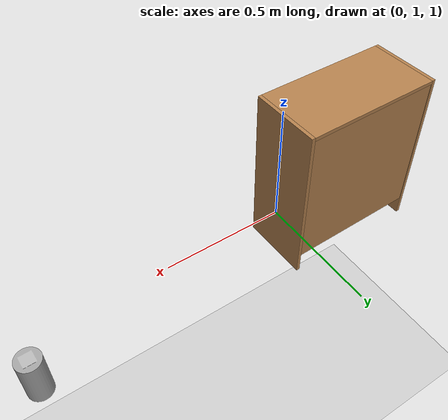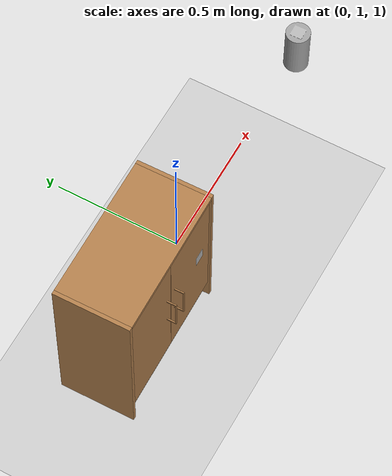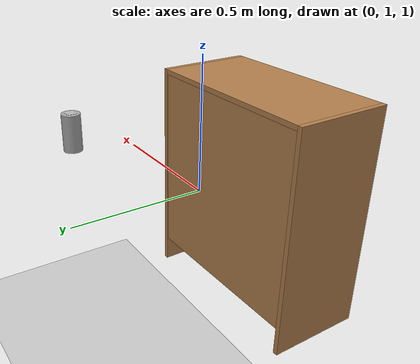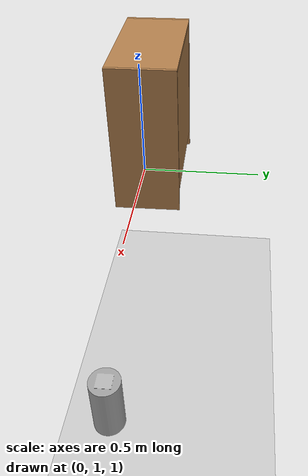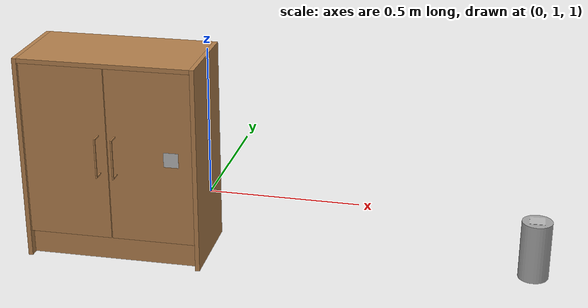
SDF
<sdf version="1.6">
 <world name="default">
  <light name="sun" type="directional">
   <pose>0 0 10 0 -0 0</pose>
   <diffuse>0.8 0.8 0.8 1</diffuse>
   <specular>0.2 0.2 0.2 1</specular>
   <attenuation>
    <range>1000</range>
    <constant>0.9</constant>
    <linear>0.01</linear>
    <quadratic>0.001</quadratic>
   </attenuation>
   <direction>-0.5 0.1 -0.9</direction>
  </light>
  <model name="ground_plane">
   <static>1</static>
   <link name="link">
    <collision name="collision">
     <geometry><plane><normal>0 0 1</normal><size>100 100</size></plane></geometry>
     <surface><friction><ode><mu>100</mu><mu2>50</mu2></ode></friction></surface>
    </collision>
    <visual name="visual">
     <cast_shadows>0</cast_shadows>
     <geometry><plane><normal>0 0 1</normal><size>100 100</size></plane></geometry>
     <material>
      <script><uri>file://media/materials/scripts/gazebo.material</uri><name>Gazebo/Grey</name></script>
     </material>
    </visual>
   </link>
  </model>
  <physics name="dart_2ms" default="0" type="dart">
   <max_step_size>0.002</max_step_size>
   <real_time_factor>1</real_time_factor>
   <real_time_update_rate>500</real_time_update_rate>
   <dart><solver><solver_type>pgs</solver_type></solver></dart>
  </physics>
  <scene><ambient>0.4 0.4 0.4 1</ambient><background>0.7 0.7 0.7 1</background><shadows>1</shadows></scene>
  <spherical_coordinates>
   <surface_model>EARTH_WGS84</surface_model>
   <latitude_deg>0</latitude_deg>
   <longitude_deg>0</longitude_deg>
   <elevation>0</elevation>
   <heading_deg>0</heading_deg>
  </spherical_coordinates>
  <gravity>0 0 -9.8</gravity>
  <magnetic_field>6e-06 2.3e-05 -4.2e-05</magnetic_field>
  <atmosphere type="adiabatic"/>
  <audio><device>default</device></audio>
  <model name="jar">
   <link name="link">
    <inertial>
     <mass>0.2</mass>
     <inertia><ixx>0.00079</ixx><ixy>0</ixy><ixz>0</ixz><iyy>0.00079</iyy><iyz>0</iyz><izz>0.00025</izz></inertia>
    </inertial>
    <collision name="collision">
     <geometry><mesh><uri>model://jar_marker/meshes/jar_marker.dae</uri></mesh></geometry>
     <surface>
      <friction><ode><mu>1</mu><mu2>1</mu2></ode></friction>
      <contact><ode><kp>1e+07</kp><kd>1</kd><min_depth>0.001</min_depth><max_vel>0.1</max_vel></ode></contact>
     </surface>
    </collision>
    <visual name="visual">
     <geometry><mesh><uri>model://jar_marker/meshes/jar_marker.dae</uri></mesh></geometry>
    </visual>
   </link>
   <pose>1.07424 1.05324 0.875 2e-06 4e-06 -1.5533</pose>
  </model>
  <model name="cabinet_door_fragile">
   <plugin name="BreakableJoint" filename="libbreakable_joint.so">
    <joint_name>right_handle_joint</joint_name>
    <pos_min>-0.05</pos_min>
    <pos_max>0.05</pos_max>
   </plugin>
   <plugin name="BreakableJoint" filename="libbreakable_joint.so">
    <joint_name>right_handle_joint2</joint_name>
    <pos_min>-0.05</pos_min>
    <pos_max>0.05</pos_max>
   </plugin>
   <plugin name="BreakableJoint" filename="libbreakable_joint.so">
    <joint_name>left_handle_joint</joint_name>
    <pos_min>-0.05</pos_min>
    <pos_max>0.05</pos_max>
   </plugin>
   <plugin name="BreakableJoint" filename="libbreakable_joint.so">
    <joint_name>left_handle_joint2</joint_name>
    <pos_min>-0.05</pos_min>
    <pos_max>0.05</pos_max>
   </plugin>
   <link name="cabinet">
    <pose>0 0 0.35 0 -0 0</pose>
    <inertial>
     <mass>16</mass>
     <inertia><ixx>1.59</ixx><ixy>0</ixy><ixz>0</ixz><iyy>1.12</iyy><iyz>0</iyz><izz>0.91</izz></inertia>
    </inertial>
    <collision name="back">
     <pose>-0.14 0 0.035 0 -0 0</pose>
     <geometry><box><size>0.015 0.585 0.6</size></box></geometry>
    </collision>
    <visual name="visual1">
     <pose>-0.14 0 0.035 0 -0 0</pose>
     <geometry><box><size>0.015 0.585 0.6</size></box></geometry>
     <material>
      <script><uri>file://media/materials/scripts/gazebo.material</uri><name>Gazebo/Wood</name></script>
     </material>
    </visual>
    <collision name="left_side">
     <pose>0 -0.2925 0 0 -0 0</pose>
     <geometry><box><size>0.3 0.015 0.7</size></box></geometry>
    </collision>
    <visual name="visual2">
     <pose>0 -0.2925 0 0 -0 0</pose>
     <geometry><box><size>0.3 0.015 0.7</size></box></geometry>
     <material>
      <script><uri>file://media/materials/scripts/gazebo.material</uri><name>Gazebo/Wood</name></script>
     </material>
    </visual>
    <collision name="right_side">
     <pose>0 0.2925 0 0 -0 0</pose>
     <geometry><box><size>0.3 0.015 0.7</size></box></geometry>
    </collision>
    <visual name="visual3">
     <pose>0 0.2925 0 0 -0 0</pose>
     <geometry><box><size>0.3 0.015 0.7</size></box></geometry>
     <material>
      <script><uri>file://media/materials/scripts/gazebo.material</uri><name>Gazebo/Wood</name></script>
     </material>
    </visual>
    <collision name="bottom">
     <pose>-0.002 0 -0.2525 0 -0 0</pose>
     <geometry><box><size>0.26 0.57 0.015</size></box></geometry>
    </collision>
    <visual name="visual4">
     <pose>-0.002 0 -0.2525 0 -0 0</pose>
     <geometry><box><size>0.26 0.57 0.015</size></box></geometry>
     <material>
      <script><uri>file://media/materials/scripts/gazebo.material</uri><name>Gazebo/Wood</name></script>
     </material>
    </visual>
    <collision name="top">
     <pose>0 0 0.3425 0 -0 0</pose>
     <geometry><box><size>0.3 0.57 0.015</size></box></geometry>
    </collision>
    <visual name="visual5">
     <pose>0 0 0.3425 0 -0 0</pose>
     <geometry><box><size>0.3 0.57 0.015</size></box></geometry>
     <material>
      <script><uri>file://media/materials/scripts/gazebo.material</uri><name>Gazebo/Wood</name></script>
     </material>
    </visual>
    <collision name="middle_shelf">
     <pose>-0.002 0 0.0475 0 -0 0</pose>
     <geometry><box><size>0.26 0.57 0.015</size></box></geometry>
    </collision>
    <visual name="visual6">
     <pose>-0.002 0 0.0475 0 -0 0</pose>
     <geometry><box><size>0.26 0.57 0.015</size></box></geometry>
     <material>
      <script><uri>file://media/materials/scripts/gazebo.material</uri><name>Gazebo/Wood</name></script>
     </material>
    </visual>
    <collision name="low_front">
     <pose>0.115 0 -0.3025 0 -0 0</pose>
     <geometry><box><size>0.015 0.57 0.09</size></box></geometry>
    </collision>
    <visual name="visual7">
     <pose>0.115 0 -0.3025 0 -0 0</pose>
     <geometry><box><size>0.015 0.57 0.09</size></box></geometry>
     <material>
      <script><uri>file://media/materials/scripts/gazebo.material</uri><name>Gazebo/Wood</name></script>
     </material>
    </visual>
   </link>
   <link name="right_door">
    <pose>0.135 0.2835 0.3875 0 -0 0</pose>
    <inertial>
     <mass>1.7</mass>
     <pose>0 -0.141 0 0 -0 0</pose>
     <inertia><ixx>0.06</ixx><ixy>0</ixy><ixz>0</ixz><iyy>0.49</iyy><iyz>0</iyz><izz>0.111</izz></inertia>
    </inertial>
    <collision name="right_face">
     <pose>0 -0.141 0 0 -0 0</pose>
     <geometry><box><size>0.015 0.282 0.595</size></box></geometry>
    </collision>
    <visual name="right_face_vis">
     <pose>0 -0.141 0 0 -0 0</pose>
     <geometry><box><size>0.015 0.282 0.595</size></box></geometry>
     <material>
      <script><uri>file://media/materials/scripts/gazebo.material</uri><name>Gazebo/Wood</name></script>
     </material>
    </visual>
    <collision name="right_handle_up">
     <pose>0.02475 -0.2555 0.0656 0 -0 0</pose>
     <geometry><box><size>0.04 0.005 0.005</size></box></geometry>
    </collision>
    <visual name="right_handle_up_vis">
     <pose>0.02475 -0.2555 0.0656 0 -0 0</pose>
     <geometry><box><size>0.04 0.005 0.005</size></box></geometry>
     <material>
      <script><uri>file://media/materials/scripts/gazebo.material</uri><name>Gazebo/Wood</name></script>
     </material>
    </visual>
    <collision name="right_handle_bo">
     <pose>0.02475 -0.2555 -0.06542 0 -0 0</pose>
     <geometry><box><size>0.04 0.005 0.005</size></box></geometry>
    </collision>
    <visual name="right_handle_bo_vis">
     <pose>0.02475 -0.2555 -0.06542 0 -0 0</pose>
     <geometry><box><size>0.04 0.005 0.005</size></box></geometry>
     <material>
      <script><uri>file://media/materials/scripts/gazebo.material</uri><name>Gazebo/Wood</name></script>
     </material>
    </visual>
    <visual name="visual_marker_0">
     <pose>0.007 -0.07 0 1.57075 0 1.57075</pose>
     <geometry><mesh><uri>model://marker_0/meshes/marker_0.dae</uri></mesh></geometry>
    </visual>
   </link>
   <joint name="right_handle_joint" type="revolute">
    <parent>right_door</parent>
    <child>right_handle_dummy</child>
    <axis>
     <xyz>0 1 0</xyz>
     <limit><lower>-3.1</lower><upper>3.1</upper></limit>
     <dynamics>
      <damping>0.01</damping>
      <friction>1</friction>
      <spring_reference>0</spring_reference>
      <spring_stiffness>0</spring_stiffness>
     </dynamics>
     <use_parent_model_frame>1</use_parent_model_frame>
    </axis>
   </joint>
   <link name="right_handle_dummy">
    <pose>0.17804 0.028 0.3195 0 -0 0</pose>
    <inertial>
     <mass>0.1</mass>
     <pose>0 0 0.068 0 -0 0</pose>
     <inertia>
      <ixx>0.000154133</ixx>
      <ixy>0</ixy>
      <ixz>0</ixz>
      <iyy>0.000154133</iyy>
      <iyz>0</iyz>
      <izz>0.000154133</izz>
     </inertia>
    </inertial>
   </link>
   <joint name="right_handle_joint2" type="revolute">
    <parent>right_handle_dummy</parent>
    <child>right_handle</child>
    <axis>
     <xyz>1 0 0</xyz>
     <limit><lower>-3.1</lower><upper>3.1</upper></limit>
     <dynamics>
      <damping>0.01</damping>
      <friction>1</friction>
      <spring_reference>0</spring_reference>
      <spring_stiffness>0</spring_stiffness>
     </dynamics>
     <use_parent_model_frame>1</use_parent_model_frame>
    </axis>
   </joint>
   <link name="right_handle">
    <pose>0.17804 0.028 0.3195 0 -0 0</pose>
    <inertial>
     <mass>0.1</mass>
     <pose>0 0 0.068 0 -0 0</pose>
     <inertia>
      <ixx>0.000154133</ixx>
      <ixy>0</ixy>
      <ixz>0</ixz>
      <iyy>0.000154133</iyy>
      <iyz>0</iyz>
      <izz>0.000154133</izz>
     </inertia>
    </inertial>
    <collision name="right_handle">
     <pose>0 0 0.068 0 -0 0</pose>
     <geometry><box><size>0.005 0.005 0.136</size></box></geometry>
    </collision>
    <visual name="right_handle_vis">
     <pose>0 0 0.068 0 -0 0</pose>
     <geometry><box><size>0.005 0.005 0.136</size></box></geometry>
     <material>
      <script><uri>file://media/materials/scripts/gazebo.material</uri><name>Gazebo/Wood</name></script>
     </material>
    </visual>
   </link>
   <joint name="right_joint" type="revolute">
    <parent>cabinet</parent>
    <child>right_door</child>
    <axis>
     <xyz>0 0 1</xyz>
     <limit><lower>-0.001</lower><upper>2.36</upper></limit>
     <dynamics>
      <damping>0.5</damping>
      <friction>0.1</friction>
      <spring_reference>0</spring_reference>
      <spring_stiffness>0</spring_stiffness>
     </dynamics>
     <use_parent_model_frame>1</use_parent_model_frame>
    </axis>
   </joint>
   <link name="left_door">
    <pose>0.135 -0.2835 0.3875 0 -0 0</pose>
    <inertial>
     <mass>1</mass>
     <pose>0 0.141 0 0 -0 0</pose>
     <inertia><ixx>0.06</ixx><ixy>0</ixy><ixz>0</ixz><iyy>0.49</iyy><iyz>0</iyz><izz>0.111</izz></inertia>
    </inertial>
    <collision name="left_face">
     <pose>0 0.141 0 0 -0 0</pose>
     <geometry><box><size>0.015 0.282 0.595</size></box></geometry>
    </collision>
    <visual name="left_face_vis">
     <pose>0 0.141 0 0 -0 0</pose>
     <geometry><box><size>0.015 0.282 0.595</size></box></geometry>
     <material>
      <script><uri>file://media/materials/scripts/gazebo.material</uri><name>Gazebo/Wood</name></script>
     </material>
    </visual>
    <collision name="left_handle_up">
     <pose>0.02475 0.2555 0.0656 0 -0 0</pose>
     <geometry><box><size>0.04 0.005 0.005</size></box></geometry>
    </collision>
    <visual name="left_handle_up_vis">
     <pose>0.02475 0.2555 0.0656 0 -0 0</pose>
     <geometry><box><size>0.04 0.005 0.005</size></box></geometry>
     <material>
      <script><uri>file://media/materials/scripts/gazebo.material</uri><name>Gazebo/Wood</name></script>
     </material>
    </visual>
    <collision name="left_handle_bo">
     <pose>0.02475 0.2555 -0.06542 0 -0 0</pose>
     <geometry><box><size>0.04 0.005 0.005</size></box></geometry>
    </collision>
    <visual name="left_handle_bo_vis">
     <pose>0.02475 0.2555 -0.06542 0 -0 0</pose>
     <geometry><box><size>0.04 0.005 0.005</size></box></geometry>
     <material>
      <script><uri>file://media/materials/scripts/gazebo.material</uri><name>Gazebo/Wood</name></script>
     </material>
    </visual>
   </link>
   <joint name="left_joint" type="revolute">
    <parent>cabinet</parent>
    <child>left_door</child>
    <axis>
     <xyz>0 0 1</xyz>
     <limit><lower>-2.36</lower><upper>0.001</upper></limit>
     <dynamics>
      <damping>0.5</damping>
      <friction>0.1</friction>
      <spring_reference>0</spring_reference>
      <spring_stiffness>0</spring_stiffness>
     </dynamics>
     <use_parent_model_frame>1</use_parent_model_frame>
    </axis>
   </joint>
   <joint name="left_handle_joint" type="revolute">
    <parent>left_door</parent>
    <child>left_handle_dummy</child>
    <axis>
     <xyz>0 1 0</xyz>
     <limit><lower>-3.1</lower><upper>3.1</upper></limit>
     <dynamics>
      <damping>0.01</damping>
      <friction>1</friction>
      <spring_reference>0</spring_reference>
      <spring_stiffness>0</spring_stiffness>
     </dynamics>
     <use_parent_model_frame>1</use_parent_model_frame>
    </axis>
   </joint>
   <link name="left_handle_dummy">
    <pose>0.17804 -0.028 0.3195 0 -0 0</pose>
    <inertial>
     <mass>0.1</mass>
     <pose>0 0 0.068 0 -0 0</pose>
     <inertia>
      <ixx>0.000154133</ixx>
      <ixy>0</ixy>
      <ixz>0</ixz>
      <iyy>0.000154133</iyy>
      <iyz>0</iyz>
      <izz>0.000154133</izz>
     </inertia>
    </inertial>
   </link>
   <joint name="left_handle_joint2" type="revolute">
    <parent>left_handle_dummy</parent>
    <child>left_handle</child>
    <axis>
     <xyz>1 0 0</xyz>
     <limit><lower>-3.1</lower><upper>3.1</upper></limit>
     <dynamics>
      <damping>0.01</damping>
      <friction>1</friction>
      <spring_reference>0</spring_reference>
      <spring_stiffness>0</spring_stiffness>
     </dynamics>
     <use_parent_model_frame>1</use_parent_model_frame>
    </axis>
   </joint>
   <link name="left_handle">
    <pose>0.17804 -0.028 0.3195 0 -0 0</pose>
    <inertial>
     <mass>0.1</mass>
     <pose>0 0 0.068 0 -0 0</pose>
     <inertia>
      <ixx>0.000154133</ixx>
      <ixy>0</ixy>
      <ixz>0</ixz>
      <iyy>0.000154133</iyy>
      <iyz>0</iyz>
      <izz>0.000154133</izz>
     </inertia>
    </inertial>
    <collision name="left_handle">
     <pose>0 0 0.068 0 -0 0</pose>
     <geometry><box><size>0.005 0.005 0.136</size></box></geometry>
    </collision>
    <visual name="left_handle_vis">
     <pose>0 0 0.068 0 -0 0</pose>
     <geometry><box><size>0.005 0.005 0.136</size></box></geometry>
     <material>
      <script><uri>file://media/materials/scripts/gazebo.material</uri><name>Gazebo/Wood</name></script>
     </material>
    </visual>
   </link>
   <pose>-0.304571 0.994618 0.775 0 0 -1.5539</pose>
  </model>
 </world>
</sdf>
